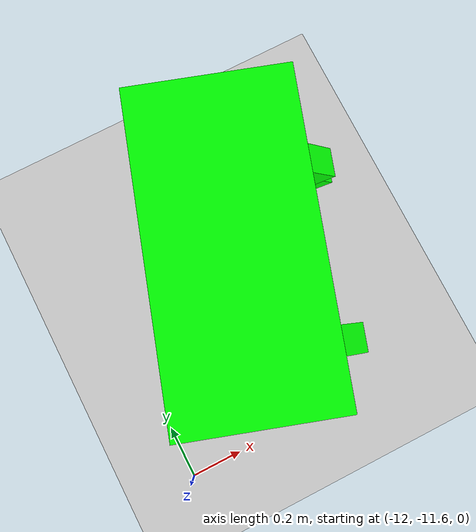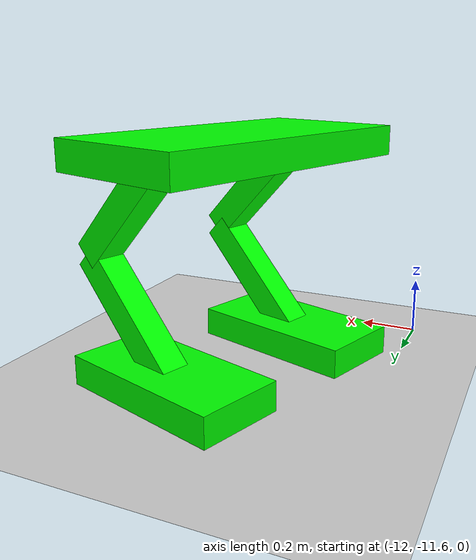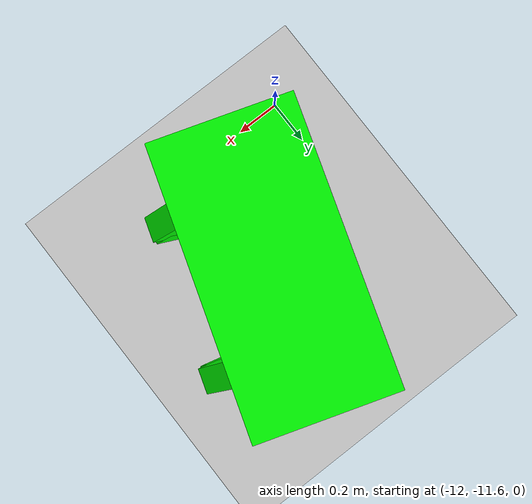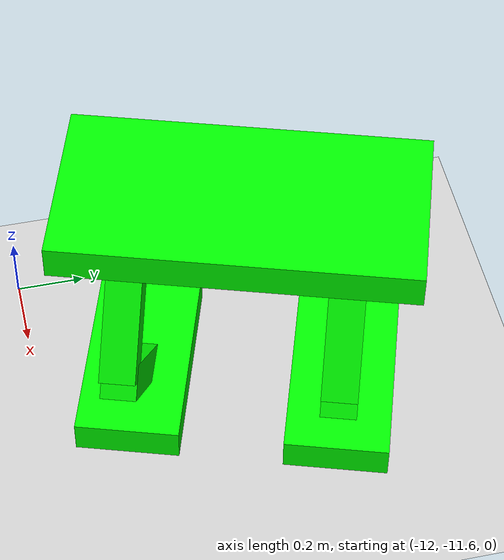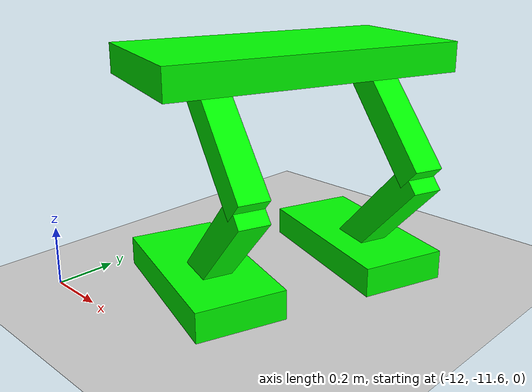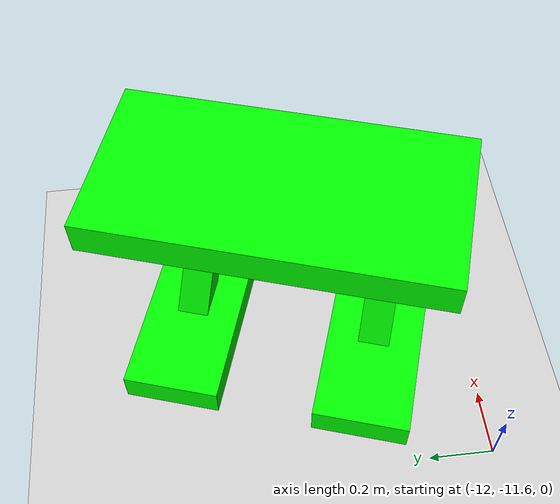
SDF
<sdf version="1.7">
 <world name="default">
  <model name="ground_plane">
   <static>1</static>
   <link name="link">
    <collision name="collision">
     <geometry><plane><normal>0 0 1</normal><size>100 100</size></plane></geometry>
     <surface>
      <contact><collide_bitmask>65535</collide_bitmask></contact>
      <friction><ode><mu>100</mu><mu2>50</mu2></ode></friction>
     </surface>
    </collision>
    <visual name="visual">
     <cast_shadows>0</cast_shadows>
     <geometry><plane><normal>0 0 1</normal><size>100 100</size></plane></geometry>
     <material>
      <script><uri>file://media/materials/scripts/gazebo.material</uri><name>Gazebo/Grey</name></script>
     </material>
    </visual>
   </link>
  </model>
  <model name="HumanoidRobot_3">
   <model name="HumanoidRobot">
    <link name="link_0">
     <pose>-0.012657 0.075 0.964637 0 -0 0</pose>
     <inertial>
      <mass>1</mass>
      <inertia>
       <ixx>0.166667</ixx>
       <ixy>0</ixy>
       <ixz>0</ixz>
       <iyy>0.166667</iyy>
       <iyz>0</iyz>
       <izz>0.166667</izz>
      </inertia>
     </inertial>
     <visual name="visual">
      <geometry><box><size>0.5 1 0.1</size></box></geometry>
      <material>
       <lighting>1</lighting>
       <script><uri>file://media/materials/scripts/gazebo.material</uri><name>Gazebo/Grey</name></script>
       <shader type="pixel"><normal_map>__default__</normal_map></shader>
       <ambient>0 1 0 1</ambient>
       <diffuse>0.1 0.1 0.1 1</diffuse>
       <specular>0 0 0 1</specular>
       <emissive>0 0 0 1</emissive>
      </material>
     </visual>
     <collision name="collision">
      <geometry><box><size>0.5 1 0.1</size></box></geometry>
      <surface>
       <friction>
        <ode><mu>1</mu><mu2>1</mu2><fdir1>0 0 0</fdir1><slip1>0</slip1><slip2>0</slip2></ode>
        <torsional>
         <coefficient>1</coefficient>
         <patch_radius>0</patch_radius>
         <surface_radius>0</surface_radius>
         <use_patch_radius>1</use_patch_radius>
         <ode><slip>0</slip></ode>
        </torsional>
       </friction>
       <bounce><restitution_coefficient>0</restitution_coefficient><threshold>1e+06</threshold></bounce>
       <contact>
        <collide_without_contact>0</collide_without_contact>
        <collide_without_contact_bitmask>1</collide_without_contact_bitmask>
        <collide_bitmask>1</collide_bitmask>
        <ode>
         <soft_cfm>0</soft_cfm>
         <soft_erp>0.2</soft_erp>
         <kp>1e+13</kp>
         <kd>1</kd>
         <max_vel>0.01</max_vel>
         <min_depth>0</min_depth>
        </ode>
        <bullet>
         <split_impulse>1</split_impulse>
         <split_impulse_penetration_threshold>-0.01</split_impulse_penetration_threshold>
         <soft_cfm>0</soft_cfm>
         <soft_erp>0.2</soft_erp>
         <kp>1e+13</kp>
         <kd>1</kd>
        </bullet>
       </contact>
      </surface>
     </collision>
    </link>
    <link name="link_2">
     <pose>-0.012657 0.375 0.964637 0 -0.785 0</pose>
     <inertial>
      <mass>1</mass>
      <inertia>
       <ixx>0.166667</ixx>
       <ixy>0</ixy>
       <ixz>0</ixz>
       <iyy>0.166667</iyy>
       <iyz>0</iyz>
       <izz>0.166667</izz>
      </inertia>
     </inertial>
     <visual name="visual">
      <pose>0 0 -0.25 0 -0 0</pose>
      <geometry><box><size>0.1 0.1 0.5</size></box></geometry>
      <material>
       <lighting>1</lighting>
       <script><uri>file://media/materials/scripts/gazebo.material</uri><name>Gazebo/Grey</name></script>
       <shader type="pixel"><normal_map>__default__</normal_map></shader>
       <ambient>0 1 0 1</ambient>
       <diffuse>0.1 0.1 0.1 1</diffuse>
       <specular>0 0 0 1</specular>
       <emissive>0 0 0 1</emissive>
      </material>
     </visual>
     <collision name="collision">
      <pose>0 0 -0.25 0 -0 0</pose>
      <geometry><box><size>0.1 0.1 0.5</size></box></geometry>
      <surface>
       <friction>
        <ode><mu>1</mu><mu2>1</mu2><fdir1>0 0 0</fdir1><slip1>0</slip1><slip2>0</slip2></ode>
        <torsional>
         <coefficient>1</coefficient>
         <patch_radius>0</patch_radius>
         <surface_radius>0</surface_radius>
         <use_patch_radius>1</use_patch_radius>
         <ode><slip>0</slip></ode>
        </torsional>
       </friction>
       <bounce><restitution_coefficient>0</restitution_coefficient><threshold>1e+06</threshold></bounce>
       <contact>
        <collide_without_contact>0</collide_without_contact>
        <collide_without_contact_bitmask>1</collide_without_contact_bitmask>
        <collide_bitmask>1</collide_bitmask>
        <ode>
         <soft_cfm>0</soft_cfm>
         <soft_erp>0.2</soft_erp>
         <kp>1e+13</kp>
         <kd>1</kd>
         <max_vel>0.01</max_vel>
         <min_depth>0</min_depth>
        </ode>
        <bullet>
         <split_impulse>1</split_impulse>
         <split_impulse_penetration_threshold>-0.01</split_impulse_penetration_threshold>
         <soft_cfm>0</soft_cfm>
         <soft_erp>0.2</soft_erp>
         <kp>1e+13</kp>
         <kd>1</kd>
        </bullet>
       </contact>
      </surface>
     </collision>
    </link>
    <link name="link_2_clone">
     <pose>0.340755 0.375 0.610943 0 0.7857 0</pose>
     <inertial>
      <mass>1</mass>
      <inertia>
       <ixx>0.166667</ixx>
       <ixy>0</ixy>
       <ixz>0</ixz>
       <iyy>0.166667</iyy>
       <iyz>0</iyz>
       <izz>0.166667</izz>
      </inertia>
     </inertial>
     <visual name="visual">
      <pose>0 0 -0.25 0 -0 0</pose>
      <geometry><box><size>0.1 0.1 0.5</size></box></geometry>
      <material>
       <lighting>1</lighting>
       <script><uri>file://media/materials/scripts/gazebo.material</uri><name>Gazebo/Grey</name></script>
       <shader type="pixel"><normal_map>__default__</normal_map></shader>
       <ambient>0 1 0 1</ambient>
       <diffuse>0.1 0.1 0.1 1</diffuse>
       <specular>0 0 0 1</specular>
       <emissive>0 0 0 1</emissive>
      </material>
     </visual>
     <collision name="collision">
      <pose>0 0 -0.25 0 -0 0</pose>
      <geometry><box><size>0.1 0.1 0.5</size></box></geometry>
      <surface>
       <friction>
        <ode><mu>1</mu><mu2>1</mu2><fdir1>0 0 0</fdir1><slip1>0</slip1><slip2>0</slip2></ode>
        <torsional>
         <coefficient>1</coefficient>
         <patch_radius>0</patch_radius>
         <surface_radius>0</surface_radius>
         <use_patch_radius>1</use_patch_radius>
         <ode><slip>0</slip></ode>
        </torsional>
       </friction>
       <bounce><restitution_coefficient>0</restitution_coefficient><threshold>1e+06</threshold></bounce>
       <contact>
        <collide_without_contact>0</collide_without_contact>
        <collide_without_contact_bitmask>1</collide_without_contact_bitmask>
        <collide_bitmask>1</collide_bitmask>
        <ode>
         <soft_cfm>0</soft_cfm>
         <soft_erp>0.2</soft_erp>
         <kp>1e+13</kp>
         <kd>1</kd>
         <max_vel>0.01</max_vel>
         <min_depth>0</min_depth>
        </ode>
        <bullet>
         <split_impulse>1</split_impulse>
         <split_impulse_penetration_threshold>-0.01</split_impulse_penetration_threshold>
         <soft_cfm>0</soft_cfm>
         <soft_erp>0.2</soft_erp>
         <kp>1e+13</kp>
         <kd>1</kd>
        </bullet>
       </contact>
      </surface>
     </collision>
    </link>
    <link name="link_2_clone_clone">
     <pose>-0.012657 -0.225 0.964637 0 -0.7857 0</pose>
     <inertial>
      <mass>1</mass>
      <inertia>
       <ixx>0.166667</ixx>
       <ixy>0</ixy>
       <ixz>0</ixz>
       <iyy>0.166667</iyy>
       <iyz>0</iyz>
       <izz>0.166667</izz>
      </inertia>
     </inertial>
     <visual name="visual">
      <pose>0 0 -0.25 0 -0 0</pose>
      <geometry><box><size>0.1 0.1 0.5</size></box></geometry>
      <material>
       <lighting>1</lighting>
       <script><uri>file://media/materials/scripts/gazebo.material</uri><name>Gazebo/Grey</name></script>
       <shader type="pixel"><normal_map>__default__</normal_map></shader>
       <ambient>0 1 0 1</ambient>
       <diffuse>0.1 0.1 0.1 1</diffuse>
       <specular>0 0 0 1</specular>
       <emissive>0 0 0 1</emissive>
      </material>
     </visual>
     <collision name="collision">
      <pose>0 0 -0.25 0 -0 0</pose>
      <geometry><box><size>0.1 0.1 0.5</size></box></geometry>
      <surface>
       <friction>
        <ode><mu>1</mu><mu2>1</mu2><fdir1>0 0 0</fdir1><slip1>0</slip1><slip2>0</slip2></ode>
        <torsional>
         <coefficient>1</coefficient>
         <patch_radius>0</patch_radius>
         <surface_radius>0</surface_radius>
         <use_patch_radius>1</use_patch_radius>
         <ode><slip>0</slip></ode>
        </torsional>
       </friction>
       <bounce><restitution_coefficient>0</restitution_coefficient><threshold>1e+06</threshold></bounce>
       <contact>
        <collide_without_contact>0</collide_without_contact>
        <collide_without_contact_bitmask>1</collide_without_contact_bitmask>
        <collide_bitmask>1</collide_bitmask>
        <ode>
         <soft_cfm>0</soft_cfm>
         <soft_erp>0.2</soft_erp>
         <kp>1e+13</kp>
         <kd>1</kd>
         <max_vel>0.01</max_vel>
         <min_depth>0</min_depth>
        </ode>
        <bullet>
         <split_impulse>1</split_impulse>
         <split_impulse_penetration_threshold>-0.01</split_impulse_penetration_threshold>
         <soft_cfm>0</soft_cfm>
         <soft_erp>0.2</soft_erp>
         <kp>1e+13</kp>
         <kd>1</kd>
        </bullet>
       </contact>
      </surface>
     </collision>
    </link>
    <link name="link_2_clone_clone_clone">
     <pose>0.341003 -0.225 0.611191 0 0.785 0</pose>
     <inertial>
      <mass>1</mass>
      <inertia>
       <ixx>0.166667</ixx>
       <ixy>0</ixy>
       <ixz>0</ixz>
       <iyy>0.166667</iyy>
       <iyz>0</iyz>
       <izz>0.166667</izz>
      </inertia>
     </inertial>
     <visual name="visual">
      <pose>0 0 -0.25 0 -0 0</pose>
      <geometry><box><size>0.1 0.1 0.5</size></box></geometry>
      <material>
       <lighting>1</lighting>
       <script><uri>file://media/materials/scripts/gazebo.material</uri><name>Gazebo/Grey</name></script>
       <shader type="pixel"><normal_map>__default__</normal_map></shader>
       <ambient>0 1 0 1</ambient>
       <diffuse>0.1 0.1 0.1 1</diffuse>
       <specular>0 0 0 1</specular>
       <emissive>0 0 0 1</emissive>
      </material>
     </visual>
     <collision name="collision">
      <pose>0 0 -0.25 0 -0 0</pose>
      <geometry><box><size>0.1 0.1 0.5</size></box></geometry>
      <surface>
       <friction>
        <ode><mu>1</mu><mu2>1</mu2><fdir1>0 0 0</fdir1><slip1>0</slip1><slip2>0</slip2></ode>
        <torsional>
         <coefficient>1</coefficient>
         <patch_radius>0</patch_radius>
         <surface_radius>0</surface_radius>
         <use_patch_radius>1</use_patch_radius>
         <ode><slip>0</slip></ode>
        </torsional>
       </friction>
       <bounce><restitution_coefficient>0</restitution_coefficient><threshold>1e+06</threshold></bounce>
       <contact>
        <collide_without_contact>0</collide_without_contact>
        <collide_without_contact_bitmask>1</collide_without_contact_bitmask>
        <collide_bitmask>1</collide_bitmask>
        <ode>
         <soft_cfm>0</soft_cfm>
         <soft_erp>0.2</soft_erp>
         <kp>1e+13</kp>
         <kd>1</kd>
         <max_vel>0.01</max_vel>
         <min_depth>0</min_depth>
        </ode>
        <bullet>
         <split_impulse>1</split_impulse>
         <split_impulse_penetration_threshold>-0.01</split_impulse_penetration_threshold>
         <soft_cfm>0</soft_cfm>
         <soft_erp>0.2</soft_erp>
         <kp>1e+13</kp>
         <kd>1</kd>
        </bullet>
       </contact>
      </surface>
     </collision>
    </link>
    <link name="link_3">
     <pose>-0.01241 -0.225 0.257496 0 -0 0</pose>
     <inertial>
      <mass>1</mass>
      <inertia>
       <ixx>0.166667</ixx>
       <ixy>0</ixy>
       <ixz>0</ixz>
       <iyy>0.166667</iyy>
       <iyz>0</iyz>
       <izz>0.166667</izz>
      </inertia>
     </inertial>
     <visual name="visual">
      <geometry><box><size>0.6 0.3 0.1</size></box></geometry>
      <material>
       <lighting>1</lighting>
       <script><uri>file://media/materials/scripts/gazebo.material</uri><name>Gazebo/Grey</name></script>
       <shader type="pixel"><normal_map>__default__</normal_map></shader>
       <ambient>0 1 0 1</ambient>
       <diffuse>0.1 0.1 0.1 1</diffuse>
       <specular>0 0 0 1</specular>
       <emissive>0 0 0 1</emissive>
      </material>
     </visual>
     <collision name="collision">
      <geometry><box><size>0.6 0.3 0.1</size></box></geometry>
      <surface>
       <friction>
        <ode><mu>1</mu><mu2>1</mu2><fdir1>0 0 0</fdir1><slip1>0</slip1><slip2>0</slip2></ode>
        <torsional>
         <coefficient>1</coefficient>
         <patch_radius>0</patch_radius>
         <surface_radius>0</surface_radius>
         <use_patch_radius>1</use_patch_radius>
         <ode><slip>0</slip></ode>
        </torsional>
       </friction>
       <bounce><restitution_coefficient>0</restitution_coefficient><threshold>1e+06</threshold></bounce>
       <contact>
        <collide_without_contact>0</collide_without_contact>
        <collide_without_contact_bitmask>1</collide_without_contact_bitmask>
        <collide_bitmask>1</collide_bitmask>
        <ode>
         <soft_cfm>0</soft_cfm>
         <soft_erp>0.2</soft_erp>
         <kp>1e+13</kp>
         <kd>1</kd>
         <max_vel>0.01</max_vel>
         <min_depth>0</min_depth>
        </ode>
        <bullet>
         <split_impulse>1</split_impulse>
         <split_impulse_penetration_threshold>-0.01</split_impulse_penetration_threshold>
         <soft_cfm>0</soft_cfm>
         <soft_erp>0.2</soft_erp>
         <kp>1e+13</kp>
         <kd>1</kd>
        </bullet>
       </contact>
      </surface>
     </collision>
    </link>
    <link name="link_3_clone">
     <pose>-0.012905 0.375 0.257496 0 -0 0</pose>
     <inertial>
      <mass>1</mass>
      <inertia>
       <ixx>0.166667</ixx>
       <ixy>0</ixy>
       <ixz>0</ixz>
       <iyy>0.166667</iyy>
       <iyz>0</iyz>
       <izz>0.166667</izz>
      </inertia>
     </inertial>
     <visual name="visual">
      <geometry><box><size>0.6 0.3 0.1</size></box></geometry>
      <material>
       <lighting>1</lighting>
       <script><uri>file://media/materials/scripts/gazebo.material</uri><name>Gazebo/Grey</name></script>
       <shader type="pixel"><normal_map>__default__</normal_map></shader>
       <ambient>0 1 0 1</ambient>
       <diffuse>0.1 0.1 0.1 1</diffuse>
       <specular>0 0 0 1</specular>
       <emissive>0 0 0 1</emissive>
      </material>
     </visual>
     <collision name="collision">
      <geometry><box><size>0.6 0.3 0.1</size></box></geometry>
      <surface>
       <friction>
        <ode><mu>1</mu><mu2>1</mu2><fdir1>0 0 0</fdir1><slip1>0</slip1><slip2>0</slip2></ode>
        <torsional>
         <coefficient>1</coefficient>
         <patch_radius>0</patch_radius>
         <surface_radius>0</surface_radius>
         <use_patch_radius>1</use_patch_radius>
         <ode><slip>0</slip></ode>
        </torsional>
       </friction>
       <bounce><restitution_coefficient>0</restitution_coefficient><threshold>1e+06</threshold></bounce>
       <contact>
        <collide_without_contact>0</collide_without_contact>
        <collide_without_contact_bitmask>1</collide_without_contact_bitmask>
        <collide_bitmask>1</collide_bitmask>
        <ode>
         <soft_cfm>0</soft_cfm>
         <soft_erp>0.2</soft_erp>
         <kp>1e+13</kp>
         <kd>1</kd>
         <max_vel>0.01</max_vel>
         <min_depth>0</min_depth>
        </ode>
        <bullet>
         <split_impulse>1</split_impulse>
         <split_impulse_penetration_threshold>-0.01</split_impulse_penetration_threshold>
         <soft_cfm>0</soft_cfm>
         <soft_erp>0.2</soft_erp>
         <kp>1e+13</kp>
         <kd>1</kd>
        </bullet>
       </contact>
      </surface>
     </collision>
    </link>
    <joint name="link_0_JOINT_0" type="fixed">
     <parent>link_0</parent>
     <child>link_2</child>
     <axis>
      <xyz>0 1 0</xyz>
      <limit>
       <lower>-1.79769e+308</lower>
       <upper>1.79769e+308</upper>
       <effort>-1</effort>
       <velocity>-1</velocity>
      </limit>
      <dynamics>
       <spring_reference>0</spring_reference>
       <spring_stiffness>0</spring_stiffness>
       <damping>0</damping>
      </dynamics>
     </axis>
     <physics>
      <ode><limit><cfm>0</cfm><erp>0.2</erp></limit><suspension><cfm>0</cfm><erp>0.2</erp></suspension></ode>
     </physics>
    </joint>
    <joint name="link_0_JOINT_2" type="fixed">
     <parent>link_0</parent>
     <child>link_2_clone_clone</child>
     <axis>
      <xyz>0 1 0</xyz>
      <limit>
       <lower>-1.79769e+308</lower>
       <upper>1.79769e+308</upper>
       <effort>-1</effort>
       <velocity>-1</velocity>
      </limit>
      <dynamics>
       <spring_reference>0</spring_reference>
       <spring_stiffness>0</spring_stiffness>
       <damping>0</damping>
       <friction>0</friction>
      </dynamics>
     </axis>
     <physics>
      <ode><limit><cfm>0</cfm><erp>0.2</erp></limit><suspension><cfm>0</cfm><erp>0.2</erp></suspension></ode>
     </physics>
    </joint>
    <joint name="link_2_JOINT_1" type="fixed">
     <parent>link_2</parent>
     <child>link_2_clone</child>
     <axis>
      <xyz>0 1 0</xyz>
      <limit>
       <lower>-1.79769e+308</lower>
       <upper>1.79769e+308</upper>
       <effort>-1</effort>
       <velocity>-1</velocity>
      </limit>
      <dynamics>
       <spring_reference>0</spring_reference>
       <spring_stiffness>0</spring_stiffness>
       <damping>0</damping>
       <friction>0</friction>
      </dynamics>
     </axis>
     <physics>
      <ode><limit><cfm>0</cfm><erp>0.2</erp></limit><suspension><cfm>0</cfm><erp>0.2</erp></suspension></ode>
     </physics>
    </joint>
    <joint name="link_2_clone_JOINT_5" type="fixed">
     <parent>link_2_clone</parent>
     <child>link_3_clone</child>
     <axis>
      <xyz>0 1 0</xyz>
      <limit>
       <lower>-1.79769e+308</lower>
       <upper>1.79769e+308</upper>
       <effort>-1</effort>
       <velocity>-1</velocity>
      </limit>
      <dynamics>
       <spring_reference>0</spring_reference>
       <spring_stiffness>0</spring_stiffness>
       <damping>0</damping>
       <friction>0</friction>
      </dynamics>
     </axis>
     <physics>
      <ode><limit><cfm>0</cfm><erp>0.2</erp></limit><suspension><cfm>0</cfm><erp>0.2</erp></suspension></ode>
     </physics>
    </joint>
    <joint name="link_2_clone_clone_JOINT_3" type="fixed">
     <parent>link_2_clone_clone</parent>
     <child>link_2_clone_clone_clone</child>
     <axis>
      <xyz>0 1 0</xyz>
      <limit>
       <lower>-1.79769e+308</lower>
       <upper>1.79769e+308</upper>
       <effort>-1</effort>
       <velocity>-1</velocity>
      </limit>
      <dynamics>
       <spring_reference>0</spring_reference>
       <spring_stiffness>0</spring_stiffness>
       <damping>0</damping>
      </dynamics>
     </axis>
     <physics>
      <ode><limit><cfm>0</cfm><erp>0.2</erp></limit><suspension><cfm>0</cfm><erp>0.2</erp></suspension></ode>
     </physics>
    </joint>
    <joint name="link_2_clone_clone_clone_JOINT_4" type="fixed">
     <parent>link_2_clone_clone_clone</parent>
     <child>link_3</child>
     <axis>
      <xyz>0 1 0</xyz>
      <limit>
       <lower>-1.79769e+308</lower>
       <upper>1.79769e+308</upper>
       <effort>-1</effort>
       <velocity>-1</velocity>
      </limit>
      <dynamics>
       <spring_reference>0</spring_reference>
       <spring_stiffness>0</spring_stiffness>
       <damping>0</damping>
      </dynamics>
     </axis>
     <physics>
      <ode><limit><cfm>0</cfm><erp>0.2</erp></limit><suspension><cfm>0</cfm><erp>0.2</erp></suspension></ode>
     </physics>
    </joint>
    <static>0</static>
   </model>
   <static>1</static>
   <pose>-11.5341 -11.0771 -0.207497 4e-06 1e-06 -0.313776</pose>
  </model>
 </world>
</sdf>
